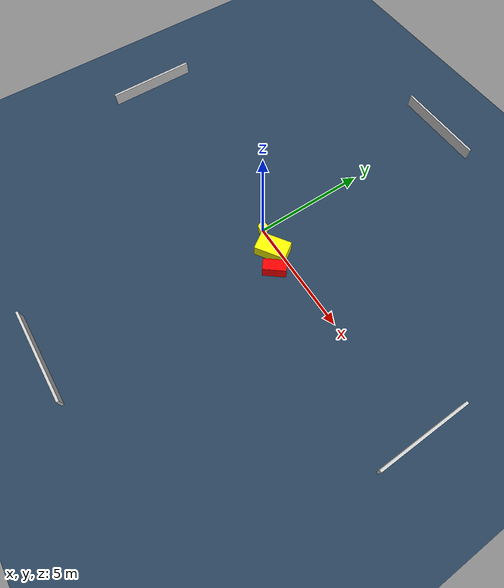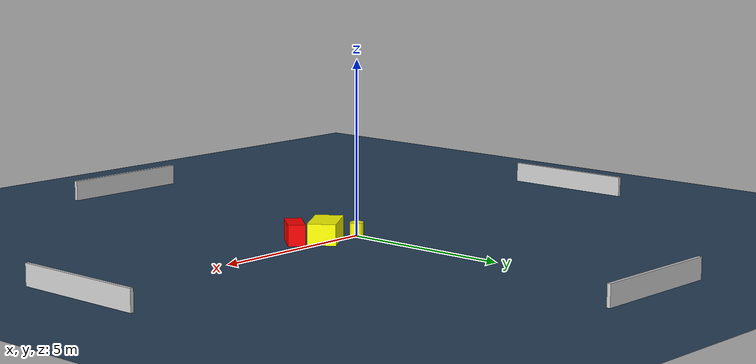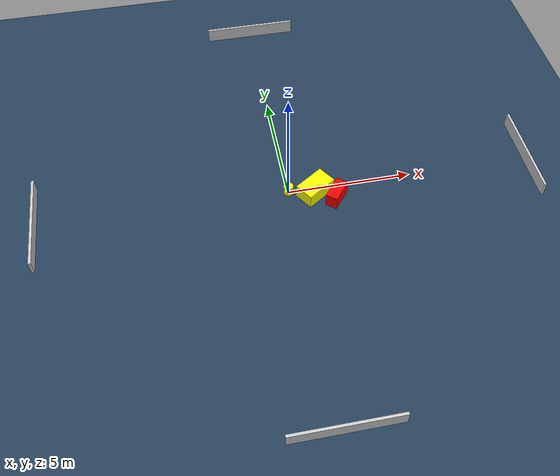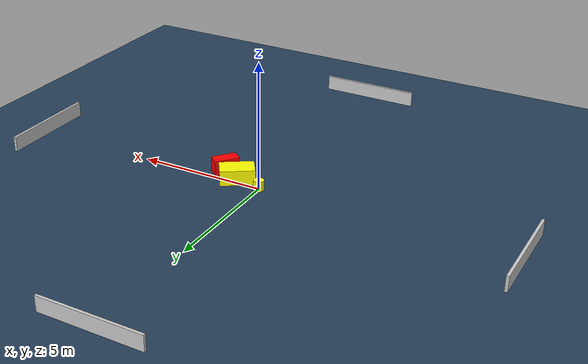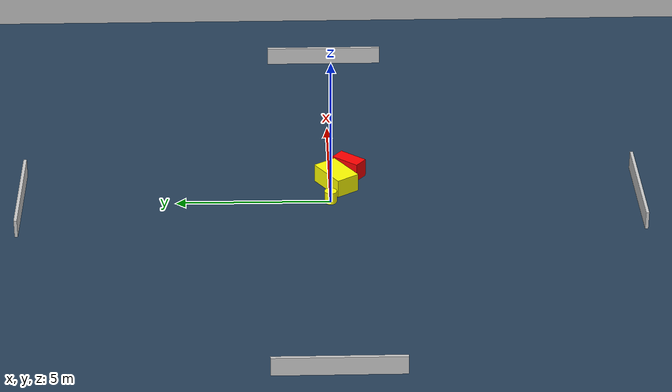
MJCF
<?xml version="1.0" ?>
<mujoco model="generated_environment">
  <option timestep="0.01" integrator="RK4" cone="elliptic"/>
  <default>
    <geom density="1"/>
  </default>
  <asset>
    <texture builtin="gradient" height="3072" name="skybox" rgb1="0.3 0.5 0.7" rgb2="0 0 0" type="skybox" width="512"/>
    <texture builtin="checker" height="300" name="groundplane" rgb1="0.2 0.3 0.4" rgb2="0.1 0.2 0.3" type="2d" width="300"/>
    <material name="groundplane" reflectance="0.2" texrepeat="5 5" texture="groundplane"/>
  </asset>
  <worldbody>
    <light dir="0 0 -1" directional="true" pos="0 0 1.5"/>
    <geom condim="3" friction="0.5 0.005 0.001" material="groundplane" name="floor" pos="0 0 0" size="0 0 0.05" type="plane"/>
    <body name="walls">
      <geom name="wall_1" condim="4" pos="-10.0 0.0 0.3" rgba="0.800000011920929 0.800000011920929 0.800000011920929 1.0" size="0.05 2.0 0.3" type="box"/>
      <geom name="wall_2" condim="4" pos="10.0 0.0 0.3" rgba="0.800000011920929 0.800000011920929 0.800000011920929 1.0" size="0.05 2.0 0.3" type="box"/>
      <geom name="wall_3" condim="4" pos="0.0 -10.0 0.3" rgba="0.800000011920929 0.800000011920929 0.800000011920929 1.0" size="2.0 0.05 0.3" type="box"/>
      <geom name="wall_4" condim="4" pos="0.0 10.0 0.3" rgba="0.800000011920929 0.800000011920929 0.800000011920929 1.0" size="2.0 0.05 0.3" type="box"/>
    </body>
    <body name="robot">
      <joint name="joint_x" type="slide" pos="0 0 0" axis="1 0 0"/>
      <joint name="joint_y" type="slide" pos="0 0 0" axis="0 1 0"/>
      <geom name="robot" type="cylinder" pos="0.0 0.0 0.2" size="0.2 0.2 0.0" mass="5.0" friction="1.0 0.005 0.0001" condim="4" rgba="1.0 1.0 0.0 1.0"/>
    </body>
    <body name="obstacle_1_movable">
      <geom name="obstacle_1_movable" condim="4" pos="1.0550553442717816 -0.21049335911559242 0.3" euler="0 0 213.6798315428929" friction="0.0 0.005 0.001" rgba="1.0 1.0 0.0 1.0" size="0.6690994221171328 0.4038523982424358 0.3" type="box" mass="0.1"/>
      <joint type="free"/>
    </body>
    <body name="obstacle_2_static">
      <geom name="obstacle_2_static" condim="4" pos="1.8303401970827753 -0.651308624062581 0.3" euler="0 0 231.27435815986246" friction="0.0 0.005 0.001" rgba="1.0 0.0 0.0 1.0" size="0.4941693535589852 0.2441631857079348 0.3" type="box"/>
    </body>
  </worldbody>
  <actuator>
    <motor name="actuator_x" joint="joint_x" gear="1" ctrlrange="-1 1"/>
    <motor name="actuator_y" joint="joint_y" gear="1" ctrlrange="-1 1"/>
  </actuator>
</mujoco>
